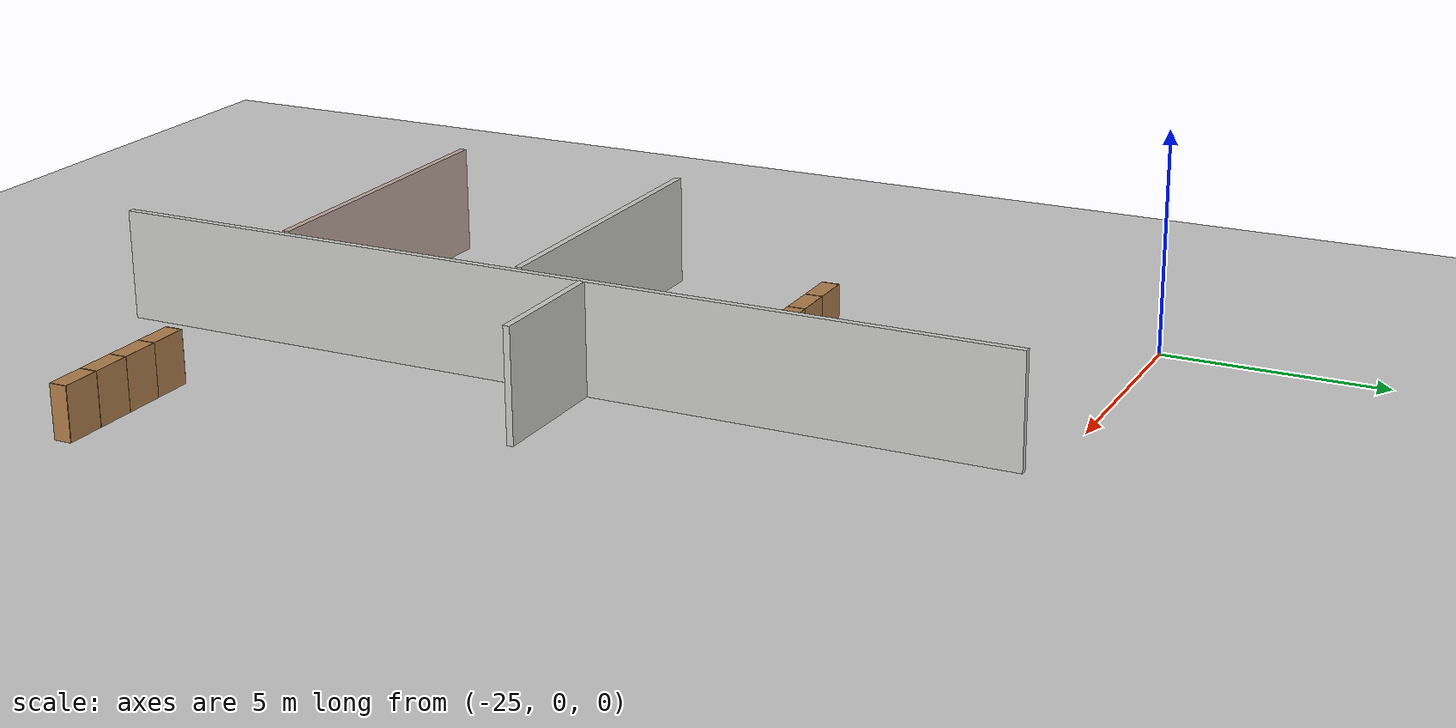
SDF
<sdf version="1.6">
 <world name="default">
  <model name="ground_plane">
   <static>1</static>
   <link name="link">
    <collision name="collision">
     <geometry><plane><normal>0 0 1</normal><size>100 100</size></plane></geometry>
     <surface><friction><ode><mu>100</mu><mu2>50</mu2></ode></friction></surface>
    </collision>
    <visual name="visual">
     <cast_shadows>0</cast_shadows>
     <geometry><plane><normal>0 0 1</normal><size>100 100</size></plane></geometry>
     <material>
      <script><uri>file://media/materials/scripts/gazebo.material</uri><name>Gazebo/Grey</name></script>
     </material>
    </visual>
   </link>
  </model>
  <model name="floor">
   <link name="Wall_105">
    <pose>-17.3392 -8.73612 0 0 -0 0</pose>
    <visual name="Wall_105_Visual">
     <pose>0 0 1.25 0 -0 0</pose>
     <geometry><box><size>3 0.15 2.5</size></box></geometry>
     <material>
      <script><uri>file://media/materials/scripts/gazebo.material</uri><name>Gazebo/CeilingTiled</name></script>
      <ambient>0.760784 0.662745 0.627451 1</ambient>
     </material>
     <meta><layer>0</layer></meta>
    </visual>
    <collision name="Wall_105_Collision">
     <pose>0 0 1.25 0 -0 0</pose>
     <geometry><box><size>3 0.15 2.5</size></box></geometry>
     <surface>
      <friction>
       <ode><mu>1</mu><mu2>1</mu2><fdir1>0 0 0</fdir1><slip1>0</slip1><slip2>0</slip2></ode>
       <torsional>
        <coefficient>1</coefficient>
        <patch_radius>0</patch_radius>
        <surface_radius>0</surface_radius>
        <use_patch_radius>1</use_patch_radius>
        <ode><slip>0</slip></ode>
       </torsional>
      </friction>
      <bounce><restitution_coefficient>0</restitution_coefficient><threshold>1e+06</threshold></bounce>
      <contact>
       <collide_without_contact>0</collide_without_contact>
       <collide_without_contact_bitmask>1</collide_without_contact_bitmask>
       <collide_bitmask>1</collide_bitmask>
       <ode>
        <soft_cfm>0</soft_cfm>
        <soft_erp>0.2</soft_erp>
        <kp>1e+13</kp>
        <kd>1</kd>
        <max_vel>0.01</max_vel>
        <min_depth>0</min_depth>
       </ode>
       <bullet>
        <split_impulse>1</split_impulse>
        <split_impulse_penetration_threshold>-0.01</split_impulse_penetration_threshold>
        <soft_cfm>0</soft_cfm>
        <soft_erp>0.2</soft_erp>
        <kp>1e+13</kp>
        <kd>1</kd>
       </bullet>
      </contact>
     </surface>
    </collision>
   </link>
   <link name="Wall_36">
    <pose>-18.8839 -9.68727 0 0 0 -1.5708</pose>
    <visual name="Wall_36_Visual">
     <pose>0 0 1.25 0 -0 0</pose>
     <geometry><box><size>21 0.15 2.5</size></box></geometry>
     <material>
      <script><uri>file://media/materials/scripts/gazebo.material</uri><name>Gazebo/CeilingTiled</name></script>
      <ambient>0.760784 0.662745 0.627451 1</ambient>
     </material>
     <meta><layer>0</layer></meta>
    </visual>
    <collision name="Wall_36_Collision">
     <pose>0 0 1.25 0 -0 0</pose>
     <geometry><box><size>21 0.15 2.5</size></box></geometry>
     <surface>
      <friction>
       <ode><mu>1</mu><mu2>1</mu2><fdir1>0 0 0</fdir1><slip1>0</slip1><slip2>0</slip2></ode>
       <torsional>
        <coefficient>1</coefficient>
        <patch_radius>0</patch_radius>
        <surface_radius>0</surface_radius>
        <use_patch_radius>1</use_patch_radius>
        <ode><slip>0</slip></ode>
       </torsional>
      </friction>
      <bounce><restitution_coefficient>0</restitution_coefficient><threshold>1e+06</threshold></bounce>
      <contact>
       <collide_without_contact>0</collide_without_contact>
       <collide_without_contact_bitmask>1</collide_without_contact_bitmask>
       <collide_bitmask>1</collide_bitmask>
       <ode>
        <soft_cfm>0</soft_cfm>
        <soft_erp>0.2</soft_erp>
        <kp>1e+13</kp>
        <kd>1</kd>
        <max_vel>0.01</max_vel>
        <min_depth>0</min_depth>
       </ode>
       <bullet>
        <split_impulse>1</split_impulse>
        <split_impulse_penetration_threshold>-0.01</split_impulse_penetration_threshold>
        <soft_cfm>0</soft_cfm>
        <soft_erp>0.2</soft_erp>
        <kp>1e+13</kp>
        <kd>1</kd>
       </bullet>
      </contact>
     </surface>
    </collision>
   </link>
   <link name="Wall_49">
    <pose>-22.6839 -10.3623 0 0 -0 0</pose>
    <visual name="Wall_49_Visual">
     <pose>0 0 1.25 0 -0 0</pose>
     <geometry><box><size>7.25 0.15 2.5</size></box></geometry>
     <material>
      <script><uri>file://media/materials/scripts/gazebo.material</uri><name>Gazebo/CeilingTiled</name></script>
      <ambient>0.760784 0.662745 0.627451 1</ambient>
     </material>
     <meta><layer>0</layer></meta>
    </visual>
    <collision name="Wall_49_Collision">
     <pose>0 0 1.25 0 -0 0</pose>
     <geometry><box><size>7.25 0.15 2.5</size></box></geometry>
     <surface>
      <friction>
       <ode><mu>1</mu><mu2>1</mu2><fdir1>0 0 0</fdir1><slip1>0</slip1><slip2>0</slip2></ode>
       <torsional>
        <coefficient>1</coefficient>
        <patch_radius>0</patch_radius>
        <surface_radius>0</surface_radius>
        <use_patch_radius>1</use_patch_radius>
        <ode><slip>0</slip></ode>
       </torsional>
      </friction>
      <bounce><restitution_coefficient>0</restitution_coefficient><threshold>1e+06</threshold></bounce>
      <contact>
       <collide_without_contact>0</collide_without_contact>
       <collide_without_contact_bitmask>1</collide_without_contact_bitmask>
       <collide_bitmask>1</collide_bitmask>
       <ode>
        <soft_cfm>0</soft_cfm>
        <soft_erp>0.2</soft_erp>
        <kp>1e+13</kp>
        <kd>1</kd>
        <max_vel>0.01</max_vel>
        <min_depth>0</min_depth>
       </ode>
       <bullet>
        <split_impulse>1</split_impulse>
        <split_impulse_penetration_threshold>-0.01</split_impulse_penetration_threshold>
        <soft_cfm>0</soft_cfm>
        <soft_erp>0.2</soft_erp>
        <kp>1e+13</kp>
        <kd>1</kd>
       </bullet>
      </contact>
     </surface>
    </collision>
   </link>
   <link name="Wall_54">
    <pose>-22.6839 -16.1623 0 0 -0 0</pose>
    <visual name="Wall_54_Visual">
     <pose>0 0 1.25 0 -0 0</pose>
     <geometry><box><size>7.25 0.15 2.5</size></box></geometry>
     <material>
      <script><uri>file://media/materials/scripts/gazebo.material</uri><name>Gazebo/Grey</name></script>
      <ambient>0.760784 0.662745 0.627451 1</ambient>
     </material>
     <meta><layer>0</layer></meta>
    </visual>
    <collision name="Wall_54_Collision">
     <pose>0 0 1.25 0 -0 0</pose>
     <geometry><box><size>7.25 0.15 2.5</size></box></geometry>
     <surface>
      <friction>
       <ode><mu>1</mu><mu2>1</mu2><fdir1>0 0 0</fdir1><slip1>0</slip1><slip2>0</slip2></ode>
       <torsional>
        <coefficient>1</coefficient>
        <patch_radius>0</patch_radius>
        <surface_radius>0</surface_radius>
        <use_patch_radius>1</use_patch_radius>
        <ode><slip>0</slip></ode>
       </torsional>
      </friction>
      <bounce><restitution_coefficient>0</restitution_coefficient><threshold>1e+06</threshold></bounce>
      <contact>
       <collide_without_contact>0</collide_without_contact>
       <collide_without_contact_bitmask>1</collide_without_contact_bitmask>
       <collide_bitmask>1</collide_bitmask>
       <ode>
        <soft_cfm>0</soft_cfm>
        <soft_erp>0.2</soft_erp>
        <kp>1e+13</kp>
        <kd>1</kd>
        <max_vel>0.01</max_vel>
        <min_depth>0</min_depth>
       </ode>
       <bullet>
        <split_impulse>1</split_impulse>
        <split_impulse_penetration_threshold>-0.01</split_impulse_penetration_threshold>
        <soft_cfm>0</soft_cfm>
        <soft_erp>0.2</soft_erp>
        <kp>1e+13</kp>
        <kd>1</kd>
       </bullet>
      </contact>
     </surface>
    </collision>
   </link>
   <model name="Bookself-4_0">
    <model name="Bookself-3">
     <model name="bookshelf_0">
      <static>1</static>
      <link name="link">
       <inertial><mass>1</mass></inertial>
       <collision name="back">
        <pose>0 0.005 0.6 0 -0 0</pose>
        <geometry><box><size>0.9 0.01 1.2</size></box></geometry>
       </collision>
       <visual name="visual1">
        <pose>0 0.005 0.6 0 -0 0</pose>
        <geometry><box><size>0.9 0.01 1.2</size></box></geometry>
        <material>
         <script><uri>file://media/materials/scripts/gazebo.material</uri><name>Gazebo/Wood</name></script>
        </material>
       </visual>
       <collision name="left_side">
        <pose>0.45 -0.195 0.6 0 -0 0</pose>
        <geometry><box><size>0.02 0.4 1.2</size></box></geometry>
       </collision>
       <visual name="visual2">
        <pose>0.45 -0.195 0.6 0 -0 0</pose>
        <geometry><box><size>0.02 0.4 1.2</size></box></geometry>
        <material>
         <script><uri>file://media/materials/scripts/gazebo.material</uri><name>Gazebo/Wood</name></script>
        </material>
       </visual>
       <collision name="right_side">
        <pose>-0.45 -0.195 0.6 0 -0 0</pose>
        <geometry><box><size>0.02 0.4 1.2</size></box></geometry>
       </collision>
       <visual name="visual3">
        <pose>-0.45 -0.195 0.6 0 -0 0</pose>
        <geometry><box><size>0.02 0.4 1.2</size></box></geometry>
        <material>
         <script><uri>file://media/materials/scripts/gazebo.material</uri><name>Gazebo/Wood</name></script>
        </material>
       </visual>
       <collision name="bottom">
        <pose>0 -0.195 0.03 0 -0 0</pose>
        <geometry><box><size>0.88 0.4 0.06</size></box></geometry>
       </collision>
       <visual name="visual4">
        <pose>0 -0.195 0.03 0 -0 0</pose>
        <geometry><box><size>0.88 0.4 0.06</size></box></geometry>
        <material>
         <script><uri>file://media/materials/scripts/gazebo.material</uri><name>Gazebo/Wood</name></script>
        </material>
       </visual>
       <collision name="top">
        <pose>0 -0.195 1.19 0 -0 0</pose>
        <geometry><box><size>0.88 0.4 0.02</size></box></geometry>
       </collision>
       <visual name="visual5">
        <pose>0 -0.195 1.19 0 -0 0</pose>
        <geometry><box><size>0.88 0.4 0.02</size></box></geometry>
        <material>
         <script><uri>file://media/materials/scripts/gazebo.material</uri><name>Gazebo/Wood</name></script>
        </material>
       </visual>
       <collision name="low_shelf">
        <pose>0 -0.195 0.43 0 -0 0</pose>
        <geometry><box><size>0.88 0.4 0.02</size></box></geometry>
       </collision>
       <visual name="visual6">
        <pose>0 -0.195 0.43 0 -0 0</pose>
        <geometry><box><size>0.88 0.4 0.02</size></box></geometry>
        <material>
         <script><uri>file://media/materials/scripts/gazebo.material</uri><name>Gazebo/Wood</name></script>
        </material>
       </visual>
       <collision name="high_shelf">
        <pose>0 -0.195 0.8 0 -0 0</pose>
        <geometry><box><size>0.88 0.4 0.02</size></box></geometry>
       </collision>
       <visual name="visual7">
        <pose>0 -0.195 0.8 0 -0 0</pose>
        <geometry><box><size>0.88 0.4 0.02</size></box></geometry>
        <material>
         <script><uri>file://media/materials/scripts/gazebo.material</uri><name>Gazebo/Wood</name></script>
        </material>
       </visual>
      </link>
      <pose>-0.903039 0 0 0 -0 0</pose>
     </model>
     <model name="bookshelf_1">
      <static>1</static>
      <link name="link">
       <inertial><mass>1</mass></inertial>
       <collision name="back">
        <pose>0 0.005 0.6 0 -0 0</pose>
        <geometry><box><size>0.9 0.01 1.2</size></box></geometry>
       </collision>
       <visual name="visual1">
        <pose>0 0.005 0.6 0 -0 0</pose>
        <geometry><box><size>0.9 0.01 1.2</size></box></geometry>
        <material>
         <script><uri>file://media/materials/scripts/gazebo.material</uri><name>Gazebo/Wood</name></script>
        </material>
       </visual>
       <collision name="left_side">
        <pose>0.45 -0.195 0.6 0 -0 0</pose>
        <geometry><box><size>0.02 0.4 1.2</size></box></geometry>
       </collision>
       <visual name="visual2">
        <pose>0.45 -0.195 0.6 0 -0 0</pose>
        <geometry><box><size>0.02 0.4 1.2</size></box></geometry>
        <material>
         <script><uri>file://media/materials/scripts/gazebo.material</uri><name>Gazebo/Wood</name></script>
        </material>
       </visual>
       <collision name="right_side">
        <pose>-0.45 -0.195 0.6 0 -0 0</pose>
        <geometry><box><size>0.02 0.4 1.2</size></box></geometry>
       </collision>
       <visual name="visual3">
        <pose>-0.45 -0.195 0.6 0 -0 0</pose>
        <geometry><box><size>0.02 0.4 1.2</size></box></geometry>
        <material>
         <script><uri>file://media/materials/scripts/gazebo.material</uri><name>Gazebo/Wood</name></script>
        </material>
       </visual>
       <collision name="bottom">
        <pose>0 -0.195 0.03 0 -0 0</pose>
        <geometry><box><size>0.88 0.4 0.06</size></box></geometry>
       </collision>
       <visual name="visual4">
        <pose>0 -0.195 0.03 0 -0 0</pose>
        <geometry><box><size>0.88 0.4 0.06</size></box></geometry>
        <material>
         <script><uri>file://media/materials/scripts/gazebo.material</uri><name>Gazebo/Wood</name></script>
        </material>
       </visual>
       <collision name="top">
        <pose>0 -0.195 1.19 0 -0 0</pose>
        <geometry><box><size>0.88 0.4 0.02</size></box></geometry>
       </collision>
       <visual name="visual5">
        <pose>0 -0.195 1.19 0 -0 0</pose>
        <geometry><box><size>0.88 0.4 0.02</size></box></geometry>
        <material>
         <script><uri>file://media/materials/scripts/gazebo.material</uri><name>Gazebo/Wood</name></script>
        </material>
       </visual>
       <collision name="low_shelf">
        <pose>0 -0.195 0.43 0 -0 0</pose>
        <geometry><box><size>0.88 0.4 0.02</size></box></geometry>
       </collision>
       <visual name="visual6">
        <pose>0 -0.195 0.43 0 -0 0</pose>
        <geometry><box><size>0.88 0.4 0.02</size></box></geometry>
        <material>
         <script><uri>file://media/materials/scripts/gazebo.material</uri><name>Gazebo/Wood</name></script>
        </material>
       </visual>
       <collision name="high_shelf">
        <pose>0 -0.195 0.8 0 -0 0</pose>
        <geometry><box><size>0.88 0.4 0.02</size></box></geometry>
       </collision>
       <visual name="visual7">
        <pose>0 -0.195 0.8 0 -0 0</pose>
        <geometry><box><size>0.88 0.4 0.02</size></box></geometry>
        <material>
         <script><uri>file://media/materials/scripts/gazebo.material</uri><name>Gazebo/Wood</name></script>
        </material>
       </visual>
      </link>
      <pose>0.000535 0 0 0 -0 0</pose>
     </model>
     <model name="bookshelf_1_clone">
      <static>1</static>
      <link name="link">
       <inertial><mass>1</mass></inertial>
       <collision name="back">
        <pose>0 0.005 0.6 0 -0 0</pose>
        <geometry><box><size>0.9 0.01 1.2</size></box></geometry>
       </collision>
       <visual name="visual1">
        <pose>0 0.005 0.6 0 -0 0</pose>
        <geometry><box><size>0.9 0.01 1.2</size></box></geometry>
        <material>
         <script><uri>file://media/materials/scripts/gazebo.material</uri><name>Gazebo/Wood</name></script>
        </material>
       </visual>
       <collision name="left_side">
        <pose>0.45 -0.195 0.6 0 -0 0</pose>
        <geometry><box><size>0.02 0.4 1.2</size></box></geometry>
       </collision>
       <visual name="visual2">
        <pose>0.45 -0.195 0.6 0 -0 0</pose>
        <geometry><box><size>0.02 0.4 1.2</size></box></geometry>
        <material>
         <script><uri>file://media/materials/scripts/gazebo.material</uri><name>Gazebo/Wood</name></script>
        </material>
       </visual>
       <collision name="right_side">
        <pose>-0.45 -0.195 0.6 0 -0 0</pose>
        <geometry><box><size>0.02 0.4 1.2</size></box></geometry>
       </collision>
       <visual name="visual3">
        <pose>-0.45 -0.195 0.6 0 -0 0</pose>
        <geometry><box><size>0.02 0.4 1.2</size></box></geometry>
        <material>
         <script><uri>file://media/materials/scripts/gazebo.material</uri><name>Gazebo/Wood</name></script>
        </material>
       </visual>
       <collision name="bottom">
        <pose>0 -0.195 0.03 0 -0 0</pose>
        <geometry><box><size>0.88 0.4 0.06</size></box></geometry>
       </collision>
       <visual name="visual4">
        <pose>0 -0.195 0.03 0 -0 0</pose>
        <geometry><box><size>0.88 0.4 0.06</size></box></geometry>
        <material>
         <script><uri>file://media/materials/scripts/gazebo.material</uri><name>Gazebo/Wood</name></script>
        </material>
       </visual>
       <collision name="top">
        <pose>0 -0.195 1.19 0 -0 0</pose>
        <geometry><box><size>0.88 0.4 0.02</size></box></geometry>
       </collision>
       <visual name="visual5">
        <pose>0 -0.195 1.19 0 -0 0</pose>
        <geometry><box><size>0.88 0.4 0.02</size></box></geometry>
        <material>
         <script><uri>file://media/materials/scripts/gazebo.material</uri><name>Gazebo/Wood</name></script>
        </material>
       </visual>
       <collision name="low_shelf">
        <pose>0 -0.195 0.43 0 -0 0</pose>
        <geometry><box><size>0.88 0.4 0.02</size></box></geometry>
       </collision>
       <visual name="visual6">
        <pose>0 -0.195 0.43 0 -0 0</pose>
        <geometry><box><size>0.88 0.4 0.02</size></box></geometry>
        <material>
         <script><uri>file://media/materials/scripts/gazebo.material</uri><name>Gazebo/Wood</name></script>
        </material>
       </visual>
       <collision name="high_shelf">
        <pose>0 -0.195 0.8 0 -0 0</pose>
        <geometry><box><size>0.88 0.4 0.02</size></box></geometry>
       </collision>
       <visual name="visual7">
        <pose>0 -0.195 0.8 0 -0 0</pose>
        <geometry><box><size>0.88 0.4 0.02</size></box></geometry>
        <material>
         <script><uri>file://media/materials/scripts/gazebo.material</uri><name>Gazebo/Wood</name></script>
        </material>
       </visual>
      </link>
      <pose>0.902502 0 0 0 -0 0</pose>
     </model>
     <static>1</static>
     <pose>-0.906894 3e-05 0 0 -0 0</pose>
    </model>
    <model name="bookshelf">
     <static>1</static>
     <link name="link">
      <inertial><mass>1</mass></inertial>
      <collision name="back">
       <pose>0 0.005 0.6 0 -0 0</pose>
       <geometry><box><size>0.9 0.01 1.2</size></box></geometry>
      </collision>
      <visual name="visual1">
       <pose>0 0.005 0.6 0 -0 0</pose>
       <geometry><box><size>0.9 0.01 1.2</size></box></geometry>
       <material>
        <script><uri>file://media/materials/scripts/gazebo.material</uri><name>Gazebo/Wood</name></script>
       </material>
      </visual>
      <collision name="left_side">
       <pose>0.45 -0.195 0.6 0 -0 0</pose>
       <geometry><box><size>0.02 0.4 1.2</size></box></geometry>
      </collision>
      <visual name="visual2">
       <pose>0.45 -0.195 0.6 0 -0 0</pose>
       <geometry><box><size>0.02 0.4 1.2</size></box></geometry>
       <material>
        <script><uri>file://media/materials/scripts/gazebo.material</uri><name>Gazebo/Wood</name></script>
       </material>
      </visual>
      <collision name="right_side">
       <pose>-0.45 -0.195 0.6 0 -0 0</pose>
       <geometry><box><size>0.02 0.4 1.2</size></box></geometry>
      </collision>
      <visual name="visual3">
       <pose>-0.45 -0.195 0.6 0 -0 0</pose>
       <geometry><box><size>0.02 0.4 1.2</size></box></geometry>
       <material>
        <script><uri>file://media/materials/scripts/gazebo.material</uri><name>Gazebo/Wood</name></script>
       </material>
      </visual>
      <collision name="bottom">
       <pose>0 -0.195 0.03 0 -0 0</pose>
       <geometry><box><size>0.88 0.4 0.06</size></box></geometry>
      </collision>
      <visual name="visual4">
       <pose>0 -0.195 0.03 0 -0 0</pose>
       <geometry><box><size>0.88 0.4 0.06</size></box></geometry>
       <material>
        <script><uri>file://media/materials/scripts/gazebo.material</uri><name>Gazebo/Wood</name></script>
       </material>
      </visual>
      <collision name="top">
       <pose>0 -0.195 1.19 0 -0 0</pose>
       <geometry><box><size>0.88 0.4 0.02</size></box></geometry>
      </collision>
      <visual name="visual5">
       <pose>0 -0.195 1.19 0 -0 0</pose>
       <geometry><box><size>0.88 0.4 0.02</size></box></geometry>
       <material>
        <script><uri>file://media/materials/scripts/gazebo.material</uri><name>Gazebo/Wood</name></script>
       </material>
      </visual>
      <collision name="low_shelf">
       <pose>0 -0.195 0.43 0 -0 0</pose>
       <geometry><box><size>0.88 0.4 0.02</size></box></geometry>
      </collision>
      <visual name="visual6">
       <pose>0 -0.195 0.43 0 -0 0</pose>
       <geometry><box><size>0.88 0.4 0.02</size></box></geometry>
       <material>
        <script><uri>file://media/materials/scripts/gazebo.material</uri><name>Gazebo/Wood</name></script>
       </material>
      </visual>
      <collision name="high_shelf">
       <pose>0 -0.195 0.8 0 -0 0</pose>
       <geometry><box><size>0.88 0.4 0.02</size></box></geometry>
      </collision>
      <visual name="visual7">
       <pose>0 -0.195 0.8 0 -0 0</pose>
       <geometry><box><size>0.88 0.4 0.02</size></box></geometry>
       <material>
        <script><uri>file://media/materials/scripts/gazebo.material</uri><name>Gazebo/Wood</name></script>
       </material>
      </visual>
     </link>
     <pose>0.906808 3e-05 0 0 -0 0</pose>
    </model>
    <static>0</static>
    <pose>-22.1417 -5.46088 0 0 -0 0</pose>
   </model>
   <static>1</static>
   <pose>1.26361 -1.27025 0 0 -0 0</pose>
  </model>
  <model name="Bookshelf-4_clone_13">
   <model name="bookshelf">
    <static>1</static>
    <link name="link">
     <inertial><mass>1</mass></inertial>
     <collision name="back">
      <pose>0 0.005 0.6 0 -0 0</pose>
      <geometry><box><size>0.9 0.01 1.2</size></box></geometry>
     </collision>
     <visual name="visual1">
      <pose>0 0.005 0.6 0 -0 0</pose>
      <geometry><box><size>0.9 0.01 1.2</size></box></geometry>
      <material>
       <script><uri>file://media/materials/scripts/gazebo.material</uri><name>Gazebo/Wood</name></script>
      </material>
     </visual>
     <collision name="left_side">
      <pose>0.45 -0.195 0.6 0 -0 0</pose>
      <geometry><box><size>0.02 0.4 1.2</size></box></geometry>
     </collision>
     <visual name="visual2">
      <pose>0.45 -0.195 0.6 0 -0 0</pose>
      <geometry><box><size>0.02 0.4 1.2</size></box></geometry>
      <material>
       <script><uri>file://media/materials/scripts/gazebo.material</uri><name>Gazebo/Wood</name></script>
      </material>
     </visual>
     <collision name="right_side">
      <pose>-0.45 -0.195 0.6 0 -0 0</pose>
      <geometry><box><size>0.02 0.4 1.2</size></box></geometry>
     </collision>
     <visual name="visual3">
      <pose>-0.45 -0.195 0.6 0 -0 0</pose>
      <geometry><box><size>0.02 0.4 1.2</size></box></geometry>
      <material>
       <script><uri>file://media/materials/scripts/gazebo.material</uri><name>Gazebo/Wood</name></script>
      </material>
     </visual>
     <collision name="bottom">
      <pose>0 -0.195 0.03 0 -0 0</pose>
      <geometry><box><size>0.88 0.4 0.06</size></box></geometry>
     </collision>
     <visual name="visual4">
      <pose>0 -0.195 0.03 0 -0 0</pose>
      <geometry><box><size>0.88 0.4 0.06</size></box></geometry>
      <material>
       <script><uri>file://media/materials/scripts/gazebo.material</uri><name>Gazebo/Wood</name></script>
      </material>
     </visual>
     <collision name="top">
      <pose>0 -0.195 1.19 0 -0 0</pose>
      <geometry><box><size>0.88 0.4 0.02</size></box></geometry>
     </collision>
     <visual name="visual5">
      <pose>0 -0.195 1.19 0 -0 0</pose>
      <geometry><box><size>0.88 0.4 0.02</size></box></geometry>
      <material>
       <script><uri>file://media/materials/scripts/gazebo.material</uri><name>Gazebo/Wood</name></script>
      </material>
     </visual>
     <collision name="low_shelf">
      <pose>0 -0.195 0.43 0 -0 0</pose>
      <geometry><box><size>0.88 0.4 0.02</size></box></geometry>
     </collision>
     <visual name="visual6">
      <pose>0 -0.195 0.43 0 -0 0</pose>
      <geometry><box><size>0.88 0.4 0.02</size></box></geometry>
      <material>
       <script><uri>file://media/materials/scripts/gazebo.material</uri><name>Gazebo/Wood</name></script>
      </material>
     </visual>
     <collision name="high_shelf">
      <pose>0 -0.195 0.8 0 -0 0</pose>
      <geometry><box><size>0.88 0.4 0.02</size></box></geometry>
     </collision>
     <visual name="visual7">
      <pose>0 -0.195 0.8 0 -0 0</pose>
      <geometry><box><size>0.88 0.4 0.02</size></box></geometry>
      <material>
       <script><uri>file://media/materials/scripts/gazebo.material</uri><name>Gazebo/Wood</name></script>
      </material>
     </visual>
    </link>
    <pose>-1.35671 -0.002097 0 0 -0 0</pose>
   </model>
   <model name="bookshelf_0">
    <static>1</static>
    <link name="link">
     <inertial><mass>1</mass></inertial>
     <collision name="back">
      <pose>0 0.005 0.6 0 -0 0</pose>
      <geometry><box><size>0.9 0.01 1.2</size></box></geometry>
     </collision>
     <visual name="visual1">
      <pose>0 0.005 0.6 0 -0 0</pose>
      <geometry><box><size>0.9 0.01 1.2</size></box></geometry>
      <material>
       <script><uri>file://media/materials/scripts/gazebo.material</uri><name>Gazebo/Wood</name></script>
      </material>
     </visual>
     <collision name="left_side">
      <pose>0.45 -0.195 0.6 0 -0 0</pose>
      <geometry><box><size>0.02 0.4 1.2</size></box></geometry>
     </collision>
     <visual name="visual2">
      <pose>0.45 -0.195 0.6 0 -0 0</pose>
      <geometry><box><size>0.02 0.4 1.2</size></box></geometry>
      <material>
       <script><uri>file://media/materials/scripts/gazebo.material</uri><name>Gazebo/Wood</name></script>
      </material>
     </visual>
     <collision name="right_side">
      <pose>-0.45 -0.195 0.6 0 -0 0</pose>
      <geometry><box><size>0.02 0.4 1.2</size></box></geometry>
     </collision>
     <visual name="visual3">
      <pose>-0.45 -0.195 0.6 0 -0 0</pose>
      <geometry><box><size>0.02 0.4 1.2</size></box></geometry>
      <material>
       <script><uri>file://media/materials/scripts/gazebo.material</uri><name>Gazebo/Wood</name></script>
      </material>
     </visual>
     <collision name="bottom">
      <pose>0 -0.195 0.03 0 -0 0</pose>
      <geometry><box><size>0.88 0.4 0.06</size></box></geometry>
     </collision>
     <visual name="visual4">
      <pose>0 -0.195 0.03 0 -0 0</pose>
      <geometry><box><size>0.88 0.4 0.06</size></box></geometry>
      <material>
       <script><uri>file://media/materials/scripts/gazebo.material</uri><name>Gazebo/Wood</name></script>
      </material>
     </visual>
     <collision name="top">
      <pose>0 -0.195 1.19 0 -0 0</pose>
      <geometry><box><size>0.88 0.4 0.02</size></box></geometry>
     </collision>
     <visual name="visual5">
      <pose>0 -0.195 1.19 0 -0 0</pose>
      <geometry><box><size>0.88 0.4 0.02</size></box></geometry>
      <material>
       <script><uri>file://media/materials/scripts/gazebo.material</uri><name>Gazebo/Wood</name></script>
      </material>
     </visual>
     <collision name="low_shelf">
      <pose>0 -0.195 0.43 0 -0 0</pose>
      <geometry><box><size>0.88 0.4 0.02</size></box></geometry>
     </collision>
     <visual name="visual6">
      <pose>0 -0.195 0.43 0 -0 0</pose>
      <geometry><box><size>0.88 0.4 0.02</size></box></geometry>
      <material>
       <script><uri>file://media/materials/scripts/gazebo.material</uri><name>Gazebo/Wood</name></script>
      </material>
     </visual>
     <collision name="high_shelf">
      <pose>0 -0.195 0.8 0 -0 0</pose>
      <geometry><box><size>0.88 0.4 0.02</size></box></geometry>
     </collision>
     <visual name="visual7">
      <pose>0 -0.195 0.8 0 -0 0</pose>
      <geometry><box><size>0.88 0.4 0.02</size></box></geometry>
      <material>
       <script><uri>file://media/materials/scripts/gazebo.material</uri><name>Gazebo/Wood</name></script>
      </material>
     </visual>
    </link>
    <pose>-0.452974 0.001386 0 0 -0 0</pose>
   </model>
   <model name="bookshelf_1">
    <static>1</static>
    <link name="link">
     <inertial><mass>1</mass></inertial>
     <collision name="back">
      <pose>0 0.005 0.6 0 -0 0</pose>
      <geometry><box><size>0.9 0.01 1.2</size></box></geometry>
     </collision>
     <visual name="visual1">
      <pose>0 0.005 0.6 0 -0 0</pose>
      <geometry><box><size>0.9 0.01 1.2</size></box></geometry>
      <material>
       <script><uri>file://media/materials/scripts/gazebo.material</uri><name>Gazebo/Wood</name></script>
      </material>
     </visual>
     <collision name="left_side">
      <pose>0.45 -0.195 0.6 0 -0 0</pose>
      <geometry><box><size>0.02 0.4 1.2</size></box></geometry>
     </collision>
     <visual name="visual2">
      <pose>0.45 -0.195 0.6 0 -0 0</pose>
      <geometry><box><size>0.02 0.4 1.2</size></box></geometry>
      <material>
       <script><uri>file://media/materials/scripts/gazebo.material</uri><name>Gazebo/Wood</name></script>
      </material>
     </visual>
     <collision name="right_side">
      <pose>-0.45 -0.195 0.6 0 -0 0</pose>
      <geometry><box><size>0.02 0.4 1.2</size></box></geometry>
     </collision>
     <visual name="visual3">
      <pose>-0.45 -0.195 0.6 0 -0 0</pose>
      <geometry><box><size>0.02 0.4 1.2</size></box></geometry>
      <material>
       <script><uri>file://media/materials/scripts/gazebo.material</uri><name>Gazebo/Wood</name></script>
      </material>
     </visual>
     <collision name="bottom">
      <pose>0 -0.195 0.03 0 -0 0</pose>
      <geometry><box><size>0.88 0.4 0.06</size></box></geometry>
     </collision>
     <visual name="visual4">
      <pose>0 -0.195 0.03 0 -0 0</pose>
      <geometry><box><size>0.88 0.4 0.06</size></box></geometry>
      <material>
       <script><uri>file://media/materials/scripts/gazebo.material</uri><name>Gazebo/Wood</name></script>
      </material>
     </visual>
     <collision name="top">
      <pose>0 -0.195 1.19 0 -0 0</pose>
      <geometry><box><size>0.88 0.4 0.02</size></box></geometry>
     </collision>
     <visual name="visual5">
      <pose>0 -0.195 1.19 0 -0 0</pose>
      <geometry><box><size>0.88 0.4 0.02</size></box></geometry>
      <material>
       <script><uri>file://media/materials/scripts/gazebo.material</uri><name>Gazebo/Wood</name></script>
      </material>
     </visual>
     <collision name="low_shelf">
      <pose>0 -0.195 0.43 0 -0 0</pose>
      <geometry><box><size>0.88 0.4 0.02</size></box></geometry>
     </collision>
     <visual name="visual6">
      <pose>0 -0.195 0.43 0 -0 0</pose>
      <geometry><box><size>0.88 0.4 0.02</size></box></geometry>
      <material>
       <script><uri>file://media/materials/scripts/gazebo.material</uri><name>Gazebo/Wood</name></script>
      </material>
     </visual>
     <collision name="high_shelf">
      <pose>0 -0.195 0.8 0 -0 0</pose>
      <geometry><box><size>0.88 0.4 0.02</size></box></geometry>
     </collision>
     <visual name="visual7">
      <pose>0 -0.195 0.8 0 -0 0</pose>
      <geometry><box><size>0.88 0.4 0.02</size></box></geometry>
      <material>
       <script><uri>file://media/materials/scripts/gazebo.material</uri><name>Gazebo/Wood</name></script>
      </material>
     </visual>
    </link>
    <pose>0.450456 0.000733 0 0 -0 0</pose>
   </model>
   <model name="bookshelf_2">
    <static>1</static>
    <link name="link">
     <inertial><mass>1</mass></inertial>
     <collision name="back">
      <pose>0 0.005 0.6 0 -0 0</pose>
      <geometry><box><size>0.9 0.01 1.2</size></box></geometry>
     </collision>
     <visual name="visual1">
      <pose>0 0.005 0.6 0 -0 0</pose>
      <geometry><box><size>0.9 0.01 1.2</size></box></geometry>
      <material>
       <script><uri>file://media/materials/scripts/gazebo.material</uri><name>Gazebo/Wood</name></script>
      </material>
     </visual>
     <collision name="left_side">
      <pose>0.45 -0.195 0.6 0 -0 0</pose>
      <geometry><box><size>0.02 0.4 1.2</size></box></geometry>
     </collision>
     <visual name="visual2">
      <pose>0.45 -0.195 0.6 0 -0 0</pose>
      <geometry><box><size>0.02 0.4 1.2</size></box></geometry>
      <material>
       <script><uri>file://media/materials/scripts/gazebo.material</uri><name>Gazebo/Wood</name></script>
      </material>
     </visual>
     <collision name="right_side">
      <pose>-0.45 -0.195 0.6 0 -0 0</pose>
      <geometry><box><size>0.02 0.4 1.2</size></box></geometry>
     </collision>
     <visual name="visual3">
      <pose>-0.45 -0.195 0.6 0 -0 0</pose>
      <geometry><box><size>0.02 0.4 1.2</size></box></geometry>
      <material>
       <script><uri>file://media/materials/scripts/gazebo.material</uri><name>Gazebo/Wood</name></script>
      </material>
     </visual>
     <collision name="bottom">
      <pose>0 -0.195 0.03 0 -0 0</pose>
      <geometry><box><size>0.88 0.4 0.06</size></box></geometry>
     </collision>
     <visual name="visual4">
      <pose>0 -0.195 0.03 0 -0 0</pose>
      <geometry><box><size>0.88 0.4 0.06</size></box></geometry>
      <material>
       <script><uri>file://media/materials/scripts/gazebo.material</uri><name>Gazebo/Wood</name></script>
      </material>
     </visual>
     <collision name="top">
      <pose>0 -0.195 1.19 0 -0 0</pose>
      <geometry><box><size>0.88 0.4 0.02</size></box></geometry>
     </collision>
     <visual name="visual5">
      <pose>0 -0.195 1.19 0 -0 0</pose>
      <geometry><box><size>0.88 0.4 0.02</size></box></geometry>
      <material>
       <script><uri>file://media/materials/scripts/gazebo.material</uri><name>Gazebo/Wood</name></script>
      </material>
     </visual>
     <collision name="low_shelf">
      <pose>0 -0.195 0.43 0 -0 0</pose>
      <geometry><box><size>0.88 0.4 0.02</size></box></geometry>
     </collision>
     <visual name="visual6">
      <pose>0 -0.195 0.43 0 -0 0</pose>
      <geometry><box><size>0.88 0.4 0.02</size></box></geometry>
      <material>
       <script><uri>file://media/materials/scripts/gazebo.material</uri><name>Gazebo/Wood</name></script>
      </material>
     </visual>
     <collision name="high_shelf">
      <pose>0 -0.195 0.8 0 -0 0</pose>
      <geometry><box><size>0.88 0.4 0.02</size></box></geometry>
     </collision>
     <visual name="visual7">
      <pose>0 -0.195 0.8 0 -0 0</pose>
      <geometry><box><size>0.88 0.4 0.02</size></box></geometry>
      <material>
       <script><uri>file://media/materials/scripts/gazebo.material</uri><name>Gazebo/Wood</name></script>
      </material>
     </visual>
    </link>
    <pose>1.35922 -1.7e-05 0 0 -0 0</pose>
   </model>
   <static>0</static>
   <pose>-12.8354 -17.8896 0 0 -0 0</pose>
  </model>
 </world>
</sdf>
